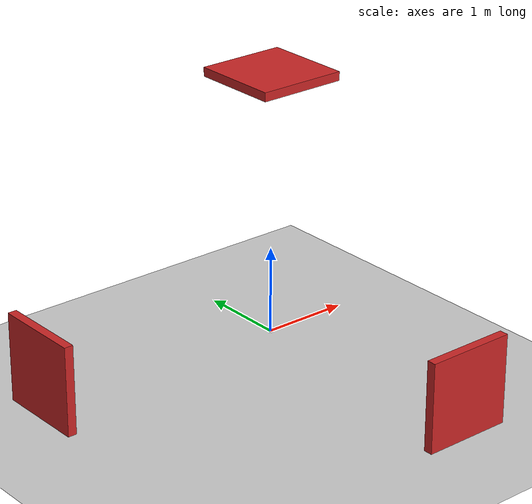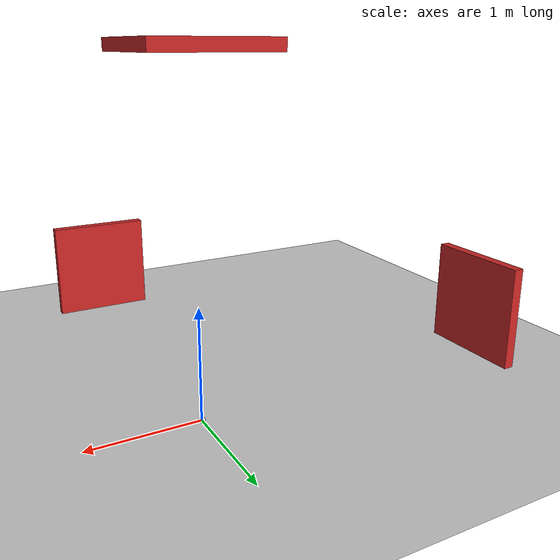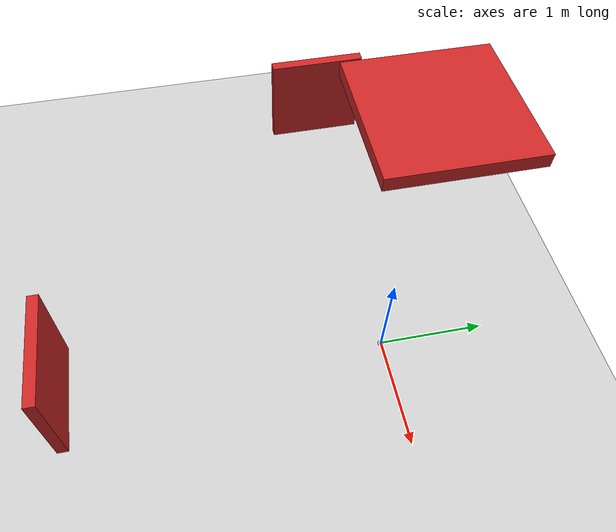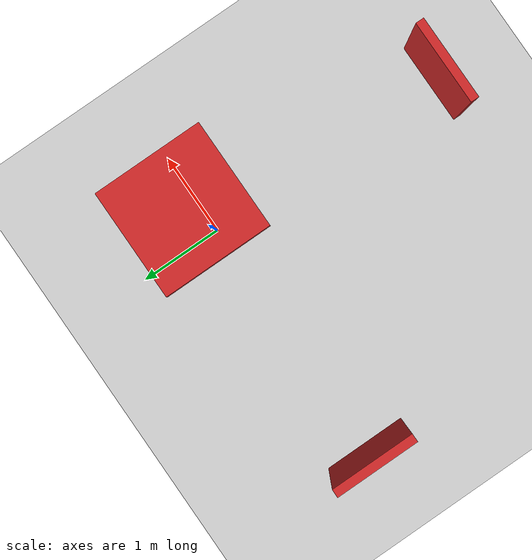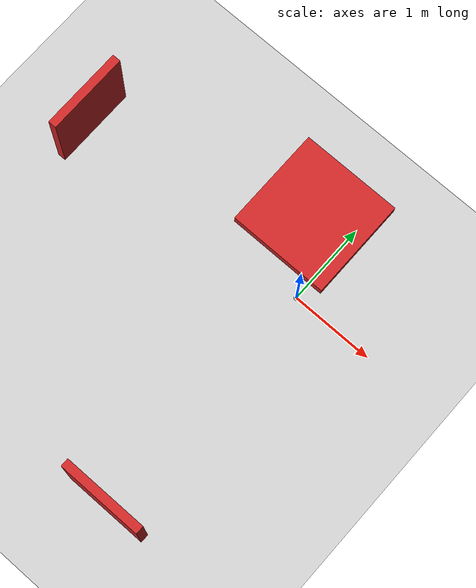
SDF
<?xml version="1.0" ?>
<sdf version="1.6">
  <world name="default">
    <include>
      <uri>model://ground_plane</uri>
    </include>

    <include>
      <uri>model://particle_sphere</uri>
      <name>particle_sphere1</name>
      <pose>0 0 0 0 0 0</pose>
    </include>

    <include>
      <uri>model://sun</uri>
    </include>

    <include>
      <uri>model://testing_surface</uri>
      <name>testing_surface1</name>
      <pose>-3 0 0.5 0 1.57 0</pose>
    </include>

    <include>
      <uri>model://testing_surface</uri>
      <name>testing_surface2</name>
      <pose>0 -3 0.5 1.57 0 0</pose>
    </include>

    <include>
      <uri>model://testing_surface</uri>
      <name>testing_surface3</name>
      <pose>0 0 3.0 0 0 0</pose>
    </include>

    <joint name = "joint_to_world" type="fixed">
      <parent>world</parent>
      <child>testing_surface_link::link</child>
    </joint>

    <atmosphere type='adiabatic'/>
    <scene>
      <sky>
        <clouds>
          <speed>12</speed>
        </clouds>
      </sky>
    </scene>

    <physics name='default_physics' default='0' type='ode'>
      <max_step_size>0.001</max_step_size>
      <real_time_factor>1</real_time_factor>
      <real_time_update_rate>1000</real_time_update_rate>
    </physics>

    <!-- reference to your plugin -->
    <plugin name="particle_shooter_plugin" filename="libparticle_shooter_plugin.so">
      <reset_frequency>1</reset_frequency>
      <x_axis_force>0.0</x_axis_force>
      <y_axis_force>0.0</y_axis_force>
      <z_axis_force>0.0</z_axis_force>

      <x_origin>0.0</x_origin>
      <y_origin>0.0</y_origin>
      <z_origin>0.0</z_origin>

      <random_range>0</random_range>

    </plugin>

  </world>
</sdf>

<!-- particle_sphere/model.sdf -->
<sdf version='1.4'>
  <model name="particle_sphere">
      <static>0</static>
      <link name='link'>
        <inertial>
          <mass>0.0025</mass>
          <inertia>
            <ixx>9e-05</ixx>
            <ixy>0.000000</ixy>
            <ixz>0.000000</ixz>
            <iyy>9e-05</iyy>
            <iyz>0.000000</iyz>
            <izz>9e-05</izz>
          </inertia>
        </inertial>
        <collision name='collision'>
          <geometry>
            <sphere>
              <radius>0.03</radius>
            </sphere>
          </geometry>
          <surface>
            <friction>
              <ode>
                <mu>30.0</mu>
                <mu2>30.0</mu2>
              </ode>
            </friction>
            <contact>
              <ode>
                <kp>1000000.0</kp>
                <kd>100.0</kd>
                <max_vel>1.0</max_vel>
                <min_depth>0.002</min_depth>
              </ode>
            </contact>
          </surface>
        </collision>
        <visual name='visual'>
          <geometry>
            <sphere>
              <radius>0.03</radius>
            </sphere>
          </geometry>
          <material>
            <script>
              <uri>file://media/materials/scripts/gazebo.material</uri>
              <name>Gazebo/White</name>
            </script>
          </material>
        </visual>
        <velocity_decay>
          <linear>0.000000</linear>
          <angular>0.000000</angular>
        </velocity_decay>
        <self_collide>0</self_collide>
        <kinematic>0</kinematic>
        <gravity>1</gravity>
      </link>
  </model>
</sdf>

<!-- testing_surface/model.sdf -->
<sdf version='1.6'>
  <model name='testing_surface'>
      <static>1</static>
      <pose frame=''>0 0 0 0 0 0</pose>
      <link name='testing_surface_link'>
        <inertial>
          <mass>0.1</mass>
          <inertia>
            <ixx>8.41666666667e-05</ixx>
            <ixy>0</ixy>
            <ixz>0</ixz>
            <iyy>3.08333333333e-05</iyy>
            <iyz>0</iyz>
            <izz>0.000113333333333</izz>
          </inertia>
        </inertial>
        <collision name='testing_surface_link_collision'>
          <geometry>
            <box>
              <size>1.0 1.0 0.1</size>
            </box>
          </geometry>
          <max_contacts>1000</max_contacts>
          <surface>
            <contact>
              <ode/>
            </contact>
            <bounce/>
            <friction>
              <torsional>
                <ode/>
              </torsional>
              <ode/>
            </friction>
          </surface>
        </collision>
        <visual name='testing_surface_link_visual'>
          <geometry>
            <box>
              <size>1.0 1.0 0.1</size>
            </box>
          </geometry>
          <material>
            <script>
              <uri>file://media/materials/scripts/gazebo.material</uri>
              <name>Gazebo/Red</name>
            </script>
          </material>
        </visual>
        <self_collide>0</self_collide>
        <kinematic>0</kinematic>
      </link>
    </model>
</sdf>
